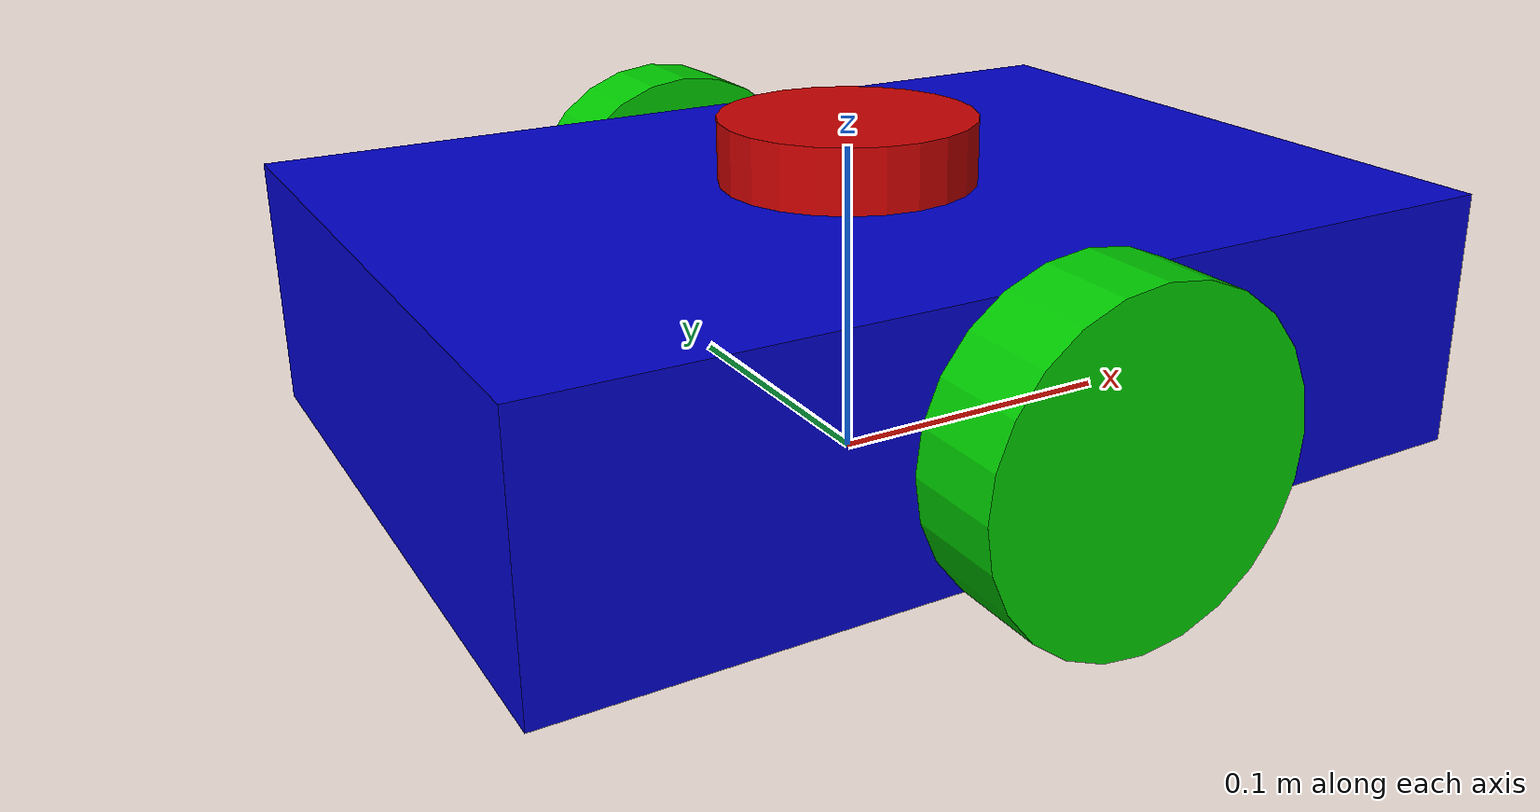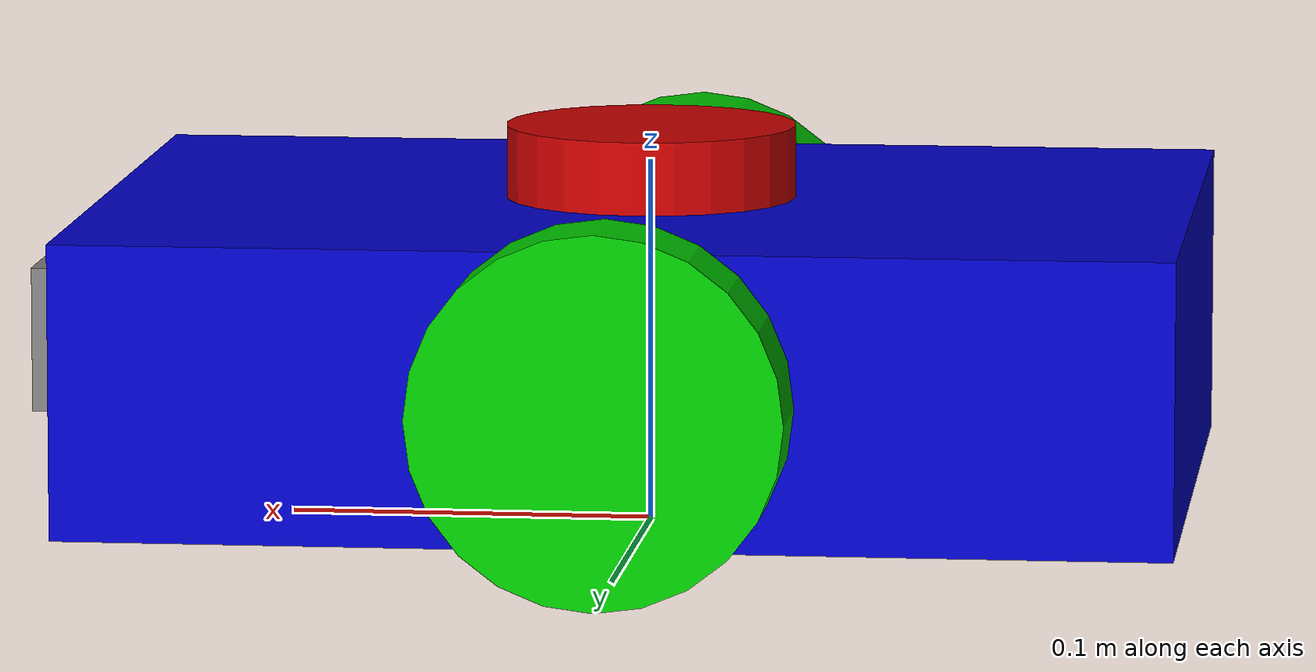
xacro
<?xml version="1.0"?>
<robot name="robo_diferencial" xmlns:xacro="http://www.ros.org/wiki/xacro">
<!-- ARQUIVO PRINCIPAL                            -->
<!-- Importa propriedades e macros, define o robô -->
<!-- IMPORTAÇÃO DE ARQUIVOS -->
<!--
   xacro:include importa o conteúdo de outros arquivos .xacro
   $(find package_name) retorna o caminho do pacote ROS
 -->
  <xacro:include filename="$(find rm_description)/urdf/propriedades_robo.xacro"/>
  <xacro:include filename="$(find rm_description)/urdf/macros.xacro"/>
  <!-- BASE FOOTPRINT       -->
  <link name="base_footprint"/>
  <!-- BASE LINK            -->
  <link name="base_link">
  <visual>
  <origin xyz="0 0 0" rpy="0 0 0"/>
  <geometry> <box size="0.30 0.22 0.08"/> </geometry>
  <material name="blue"/>
  </visual>
  <collision>
  <origin xyz="0 0 0" rpy="0 0 0"/>
  <geometry> <box size="0.30 0.22 0.08"/> </geometry>
  </collision>
  <inertial>
  <origin xyz="0 0 0" rpy="0 0 0"/>
  <mass value="4.0"/>
  <inertia ixx="0.018266667" ixy="0" ixz="0" iyy="0.032133333" iyz="0" izz="0.046133333"/>
  </inertial>
  </link>
  <joint name="base_joint" type="fixed">
  <parent link="base_footprint"/>
  <child link="base_link"/>
  <origin xyz="0 0 0.05" rpy="0 0 0"/>
  </joint>
  <!-- LINK 1 (usando macro) -->
  <!-- TAREFA: Chame o macro cylinder_link para criar o link1 -->
  <!-- Parâmetros: name, length, radius, mass, material -->
  <xacro:cylinder_link
    name="RodaEsc"
    length="${RodaEsc_length}"
    radius="${RodaEsc_radius}"
    mass="${RodaEsc_mass}"
    material="green"/>
  <joint name="jointEsc" type="continuous">
  <parent link="base_link"/>
  <child link="RodaEsc"/>
  <origin xyz="0 0.145 0" rpy="1.57079632679 0 0"/>
  <axis xyz="0 0 -1"/>
  </joint>
  <!-- LINK 2 (usando macro) -->
  <!-- TAREFA: Chame o macro cylinder_link para criar o link2 -->
  <xacro:cylinder_link
    name="RodaDir"
    length="${RodaDir_length}"
    radius="${RodaDir_radius}"
    mass="${RodaDir_mass}"
    material="green"/>
  <joint name="jointDir" type="continuous">
    <parent link="base_link"/>
    <child link="RodaDir"/>
    <origin xyz="0 -0.115 0" rpy="1.57079632679 0 0"/>
    <axis xyz="0 0 -1"/>
  </joint>

  <!-- CAMERA LINK -->
  <link name="camera">
    <visual>
    <origin xyz="0 0 0" rpy="0 0 0"/>
    <geometry>
    <box size="0.04 0.04 0.04"/>
    </geometry>
    <material name="gray"/>
    </visual>
    <collision>
    <origin xyz="0 0 0" rpy="0 0 0"/>
    <geometry>
    <box size="0.04 0.04 0.04"/>
    </geometry>
    </collision>
    <inertial>
    <origin xyz="0 0 0" rpy="0 0 0"/>
    <mass value="0.05"/>
    <inertia ixx="0.000013" ixy="0" ixz="0"
                iyy="0.000013" iyz="0"
                izz="0.000013"/>
    </inertial>
  </link>
    <joint name="cam_joint" type="fixed">
      <parent link="base_link"/>
      <child link="camera"/>
      <origin xyz="${0.3/2} 0 0" rpy="0 0 0"/>
    </joint>
    <!-- END EFFECTOR         -->
    <!-- TAREFA: Use o macro sphere_link para criar o end_effector -->
  <link name="end_effector">
    <visual>
    <origin xyz="0 0 0" rpy="0 0 0"/>
    <geometry>
    <sphere radius="${end_effector_radius}"/>
    </geometry>
    <material name="gray"/>
    </visual>
    <collision>
    <origin xyz="0 0 0" rpy="0 0 0"/>
    <geometry>
    <sphere radius="${end_effector_radius}"/>
    </geometry>
    </collision>
    <inertial>
    <origin xyz="0 0 0" rpy="0 0 0"/>
    <mass value="${end_effector_mass}"/>
    <inertia ixx="${2.0/5.0 * end_effector_mass * end_effector_radius * end_effector_radius}"
                ixy="0" ixz="0"
                iyy="${2.0/5.0 * end_effector_mass * end_effector_radius * end_effector_radius}"
                iyz="0"
                izz="${2.0/5.0 * end_effector_mass * end_effector_radius * end_effector_radius}"/>
    </inertial>
  </link>
  <joint name="end_effector_joint" type="fixed">
    <parent link="base_link"/>
    <child link="end_effector"/>
    <origin xyz="0 0 ${end_effector_radius - 0.05}" rpy="0 0 0"/>
  </joint>

  <link name = "imu"/>
    <joint name="imu_joint" type="fixed">
      <parent link="base_link"/>
      <child link="imu"/>
      <origin xyz="0 0 0" rpy="0 0 0"/>
    </joint>

  <!-- LIDAR -->
  <link name="lidar">
    <visual>
      <origin xyz="0 0 0" rpy="0 0 0"/>
    <geometry>
      <cylinder radius="0.04" length="0.02"/>
    </geometry>
      <material name="red"/>
    </visual>
    <collision>
      <origin xyz="0 0 0" rpy="0 0 0"/>
      <geometry>
        <cylinder radius="0.04" length="0.02"/>
      </geometry>
    </collision>
    <inertial>
      <origin xyz="0 0 0" rpy="0 0 0"/>
      <mass value="0.05"/>
      <inertia ixx="0.00002" ixy="0" ixz="0" iyy="0.00002" iyz="0" izz="0.00002"/>
    </inertial>
  </link>

  <joint name="lidar_joint" type="fixed">
    <parent link="base_link"/>
    <child link="lidar"/>
    <origin xyz="0 0 0.05" rpy="0 0 0"/>
  </joint>

</robot>

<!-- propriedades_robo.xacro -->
<robot xmlns:xacro="http://www.ros.org/wiki/xacro">
<!-- ARQUIVO DE PROPRIEDADES                      -->
<!-- Contém todas as constantes e dimensões       -->
<!-- Propriedades da Base -->
<xacro:property name="base_length" value="0.30"/>
<xacro:property name="base_width" value="0.22"/>
<xacro:property name="base_height" value="0.08"/>
<xacro:property name="base_mass" value="4.0"/>
<!-- Propriedades da roda esquerda -->
<xacro:property name="RodaEsc_length" value="0.03"/>
<xacro:property name="RodaEsc_radius" value="0.05"/>
<xacro:property name="RodaEsc_mass" value="0.4"/>
<!-- Propriedades da roda direita -->
<xacro:property name="RodaDir_length" value="0.03"/>
<xacro:property name="RodaDir_radius" value="0.05"/>
<xacro:property name="RodaDir_mass" value="0.4"/>
<!-- Propriedades da base do sensor -->
<xacro:property name="Sensor_base_length" value="0.08"/>
<xacro:property name="Sensor_base_radius" value="0.03"/>
<xacro:property name="Sensor_base_mass" value="0.10"/>
<!-- Propriedades do End Effector -->
<xacro:property name="end_effector_radius" value="0.03"/>
<xacro:property name="end_effector_mass" value="0.15"/>
<!-- MATERIAIS (cores)                            -->
<material name="gray">
<color rgba="0.5 0.5 0.5 1"/>
</material>
<material name="blue">
<color rgba="0 0 0.8 1"/>
</material>
<material name="red">
<color rgba="0.8 0 0 1"/>
</material>
<material name="green">
<color rgba="0 0.8 0 1"/>
</material>
</robot>

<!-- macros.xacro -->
<robot xmlns:xacro="http://www.ros.org/wiki/xacro">

  <!-- ARQUIVO DE MACROS                            -->
  <!-- Contém componentes reutilizáveis             -->

  <!-- MACRO: LINK CILÍNDRICO -->
  <xacro:macro name="cylinder_link" params="name length radius mass material">
    <link name="${name}">
      <visual>
        <!-- Desloca para que a BASE do cilindro fique na origem -->
        <origin xyz="0 0 ${length/2}" rpy="0 0 0"/>
        <geometry>
          <cylinder radius="${radius}" length="${length}"/>
        </geometry>
        <material name="${material}"/>
      </visual>

      <collision>
        <origin xyz="0 0 ${length/2}" rpy="0 0 0"/>
        <geometry>
          <cylinder radius="${radius}" length="${length}"/>
        </geometry>
      </collision>

      <inertial>
        <origin xyz="0 0 ${length/2}" rpy="0 0 0"/>
        <mass value="${mass}"/>
        <!-- Fórmula de inércia para cilindro sólido -->
        <inertia
          ixx="${(1/12) * mass * (3*radius*radius + length*length)}"
          ixy="0.0" ixz="0.0"
          iyy="${(1/12) * mass * (3*radius*radius + length*length)}"
          iyz="0.0"
          izz="${(1/2) * mass * radius * radius}"/>
      </inertial>
    </link>
  </xacro:macro>

  <!-- MACRO: LINK ESFÉRICO -->
  <xacro:macro name="sphere_link" params="name radius mass material">
    <link name="${name}">
      <visual>
        <origin xyz="0 0 0" rpy="0 0 0"/>
        <geometry>
          <sphere radius="${radius}"/>
        </geometry>
        <material name="${material}"/>
      </visual>

      <collision>
        <origin xyz="0 0 0" rpy="0 0 0"/>
        <geometry>
          <sphere radius="${radius}"/>
        </geometry>
      </collision>

      <inertial>
        <origin xyz="0 0 0" rpy="0 0 0"/>
        <mass value="${mass}"/>
        <!-- Fórmula de inércia para esfera sólida -->
        <inertia
          ixx="${(2/5) * mass * radius * radius}"
          ixy="0.0" ixz="0.0"
          iyy="${(2/5) * mass * radius * radius}"
          iyz="0.0"
          izz="${(2/5) * mass * radius * radius}"/>
      </inertial>
    </link>
  </xacro:macro>

</robot>
